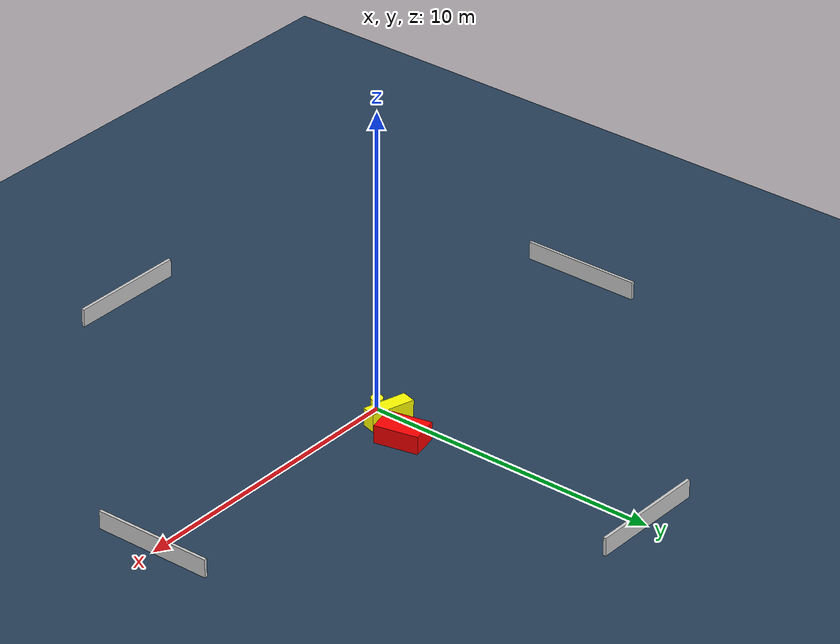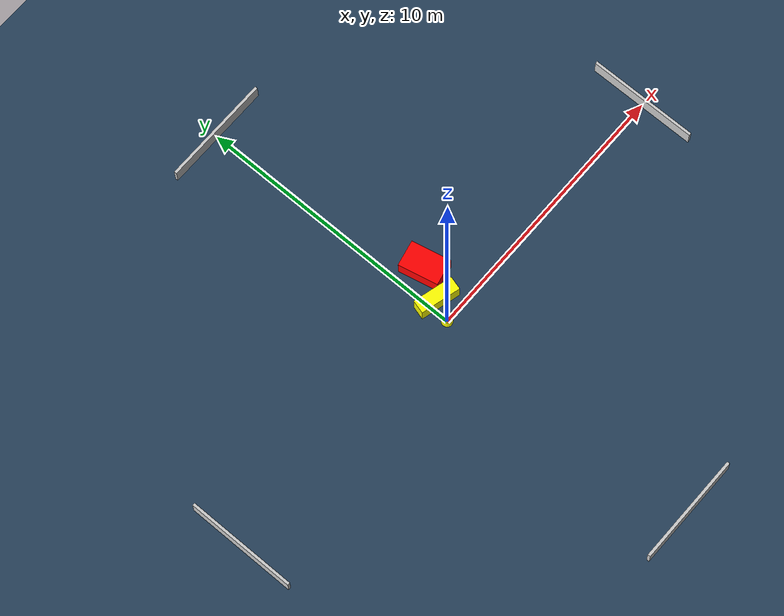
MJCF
<?xml version="1.0" ?>
<mujoco model="generated_environment">
  <option timestep="0.01" integrator="RK4" cone="elliptic"/>
  <default>
    <geom density="1"/>
  </default>
  <asset>
    <texture builtin="gradient" height="3072" name="skybox" rgb1="0.3 0.5 0.7" rgb2="0 0 0" type="skybox" width="512"/>
    <texture builtin="checker" height="300" name="groundplane" rgb1="0.2 0.3 0.4" rgb2="0.1 0.2 0.3" type="2d" width="300"/>
    <material name="groundplane" reflectance="0.2" texrepeat="5 5" texture="groundplane"/>
  </asset>
  <worldbody>
    <light dir="0 0 -1" directional="true" pos="0 0 1.5"/>
    <geom condim="3" friction="0.5 0.005 0.001" material="groundplane" name="floor" pos="0 0 0" size="0 0 0.05" type="plane"/>
    <body name="walls">
      <geom name="wall_1" condim="4" pos="-10.0 0.0 0.3" rgba="0.800000011920929 0.800000011920929 0.800000011920929 1.0" size="0.05 2.0 0.3" type="box"/>
      <geom name="wall_2" condim="4" pos="10.0 0.0 0.3" rgba="0.800000011920929 0.800000011920929 0.800000011920929 1.0" size="0.05 2.0 0.3" type="box"/>
      <geom name="wall_3" condim="4" pos="0.0 -10.0 0.3" rgba="0.800000011920929 0.800000011920929 0.800000011920929 1.0" size="2.0 0.05 0.3" type="box"/>
      <geom name="wall_4" condim="4" pos="0.0 10.0 0.3" rgba="0.800000011920929 0.800000011920929 0.800000011920929 1.0" size="2.0 0.05 0.3" type="box"/>
    </body>
    <body name="robot">
      <joint name="joint_x" type="slide" pos="0 0 0" axis="1 0 0"/>
      <joint name="joint_y" type="slide" pos="0 0 0" axis="0 1 0"/>
      <geom name="robot" type="cylinder" pos="0.0 0.0 0.2" size="0.2 0.2 0.0" mass="5.0" friction="1.0 0.005 0.0001" condim="4" rgba="1.0 1.0 0.0 1.0"/>
    </body>
    <body name="obstacle_1_movable">
      <geom name="obstacle_1_movable" condim="4" pos="0.30948622656375424 0.7074671585700086 0.3" euler="0 0 344.7423296777059" friction="0.0 0.005 0.001" rgba="1.0 1.0 0.0 1.0" size="0.7366513231565046 0.24455824466858783 0.3" type="box" mass="0.1"/>
      <joint type="free"/>
    </body>
    <body name="obstacle_2_static">
      <geom name="obstacle_2_static" condim="4" pos="0.901186921937938 1.7300737101506378 0.3" euler="0 0 12.134242519143683" friction="0.0 0.005 0.001" rgba="1.0 0.0 0.0 1.0" size="0.474623439341975 0.7255870722339381 0.3" type="box"/>
    </body>
  </worldbody>
  <actuator>
    <motor name="actuator_x" joint="joint_x" gear="1" ctrlrange="-1 1"/>
    <motor name="actuator_y" joint="joint_y" gear="1" ctrlrange="-1 1"/>
  </actuator>
</mujoco>
